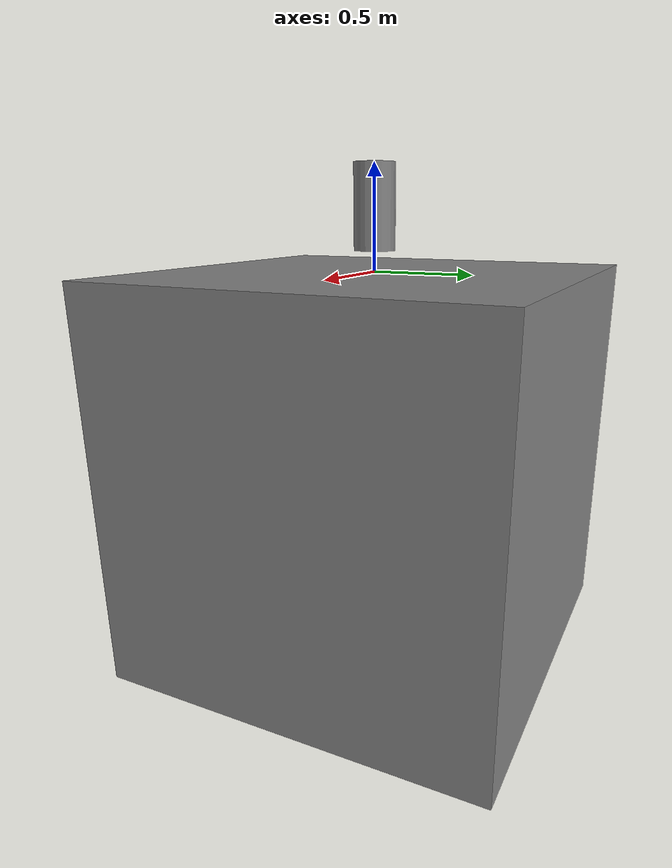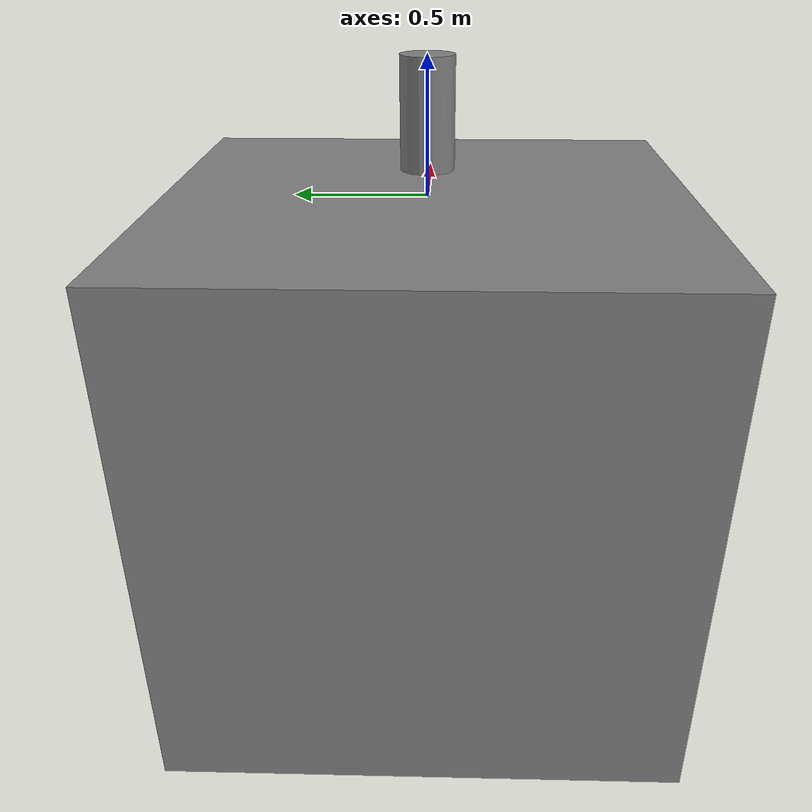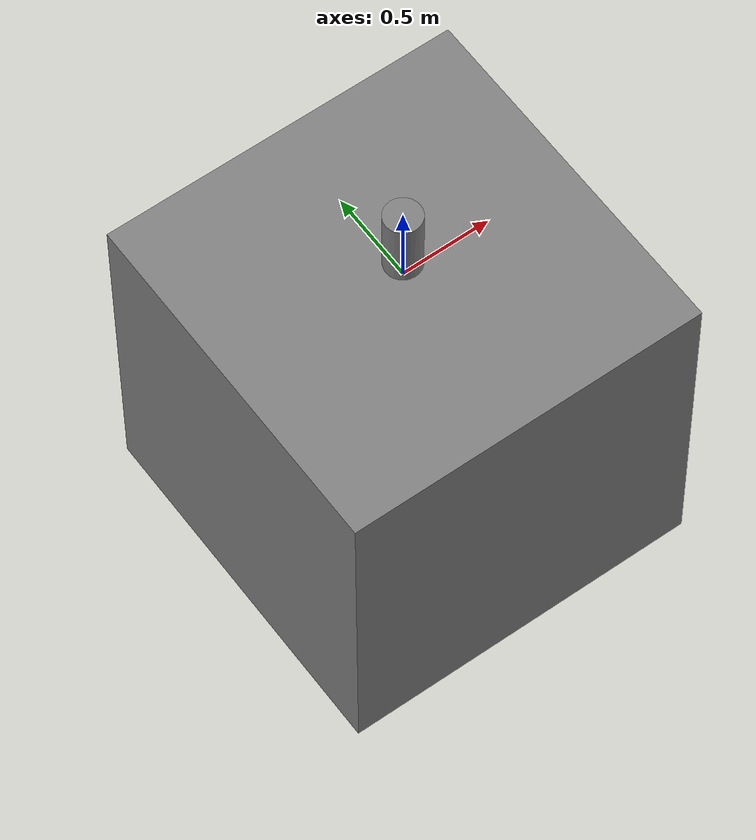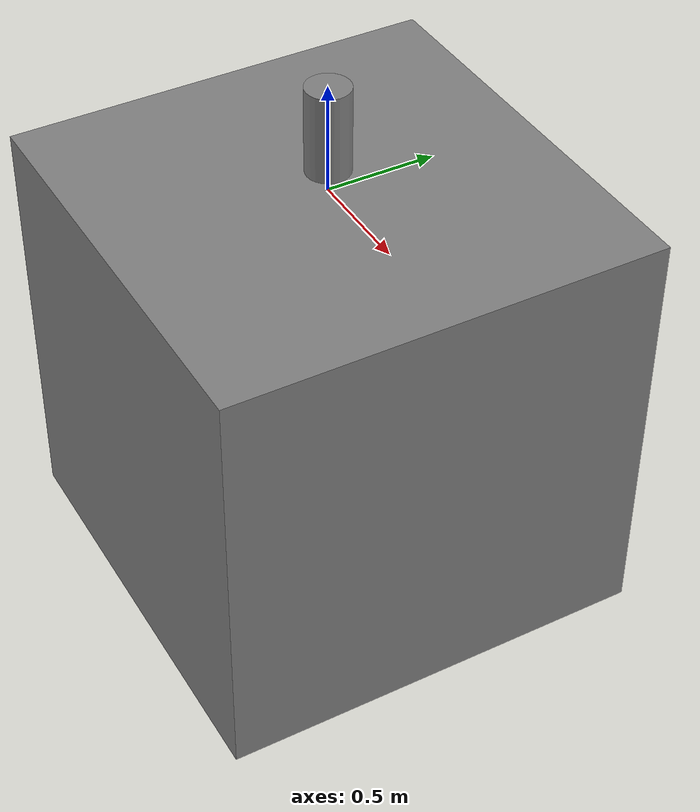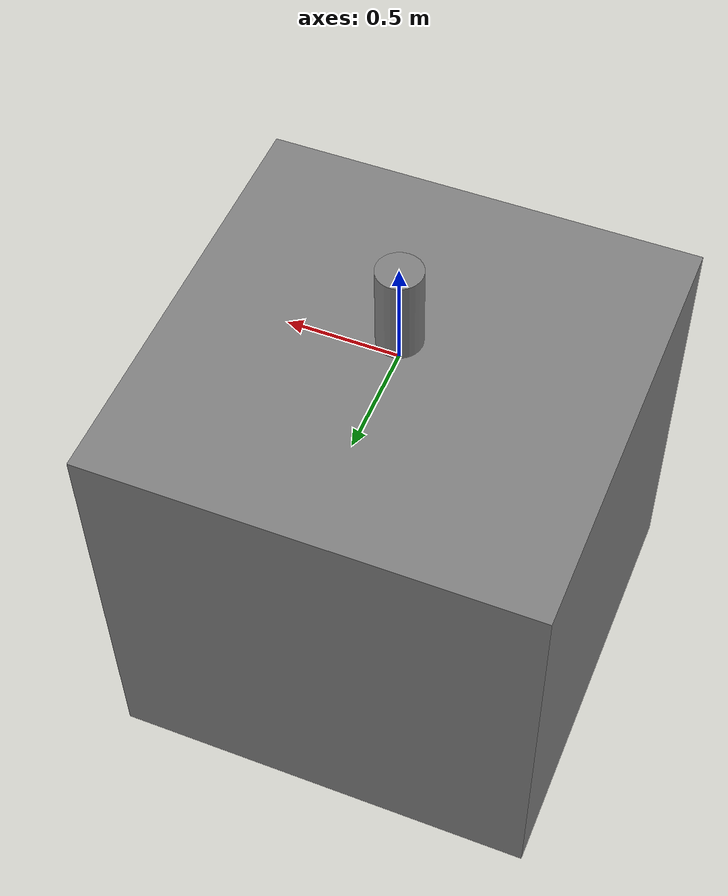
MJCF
<mujoco model="mesh-cylinder">
  <option gravity="0 0 -9.81" timestep="0.001" integrator="RK4">
    <flag multiccd="enable"/>
  </option>

  <asset>
    <mesh name="ground"
          vertex="-1 -1 -1  1 -1 -1  1 1 -1  -1 1 -1
                  -1 -1  1  1 -1  1  1 1  1  -1 1  1"
          face="0 2 1  0 3 2  4 5 6  4 6 7
                0 5 4  0 1 5  2 7 6  2 3 7
                0 7 3  0 4 7  1 6 5  1 2 6"/>
  </asset>

  <worldbody>
    <geom name="ground" type="mesh" mesh="ground" pos="0 0 -1"/>
    <body name="cylinder" pos="0 0 0.3">
      <joint type="free"/>
      <geom name="cylinder" type="cylinder" size="0.1 0.2" density="1000"/>
    </body>
  </worldbody>
</mujoco>
